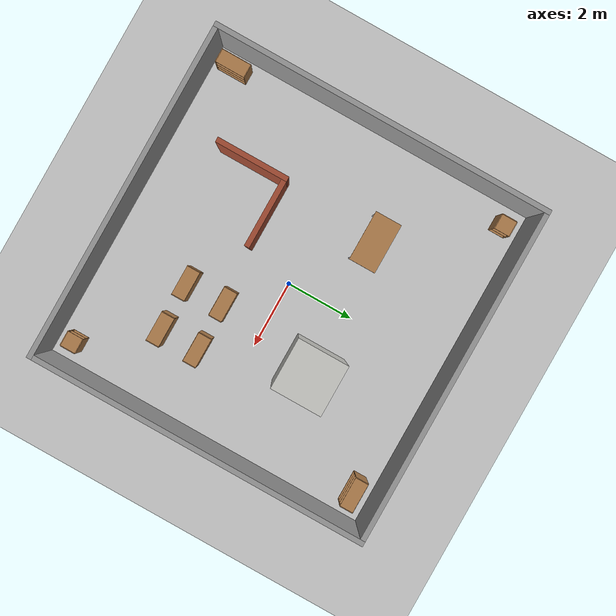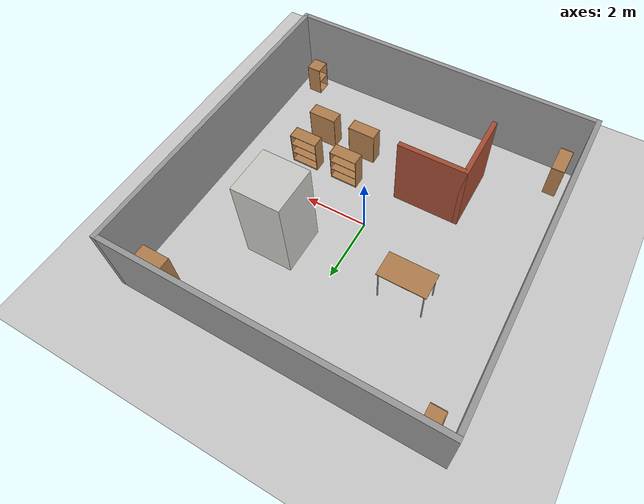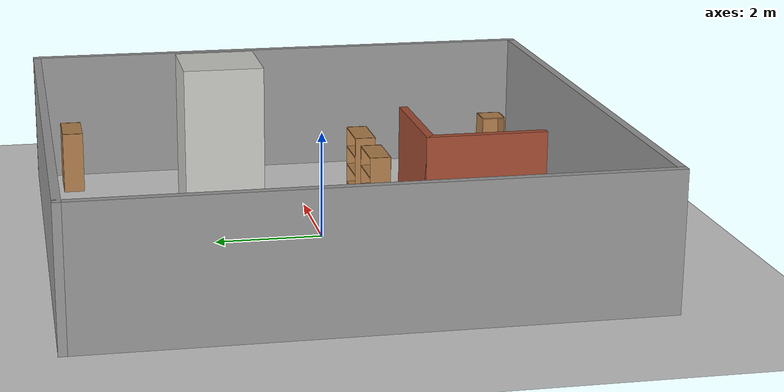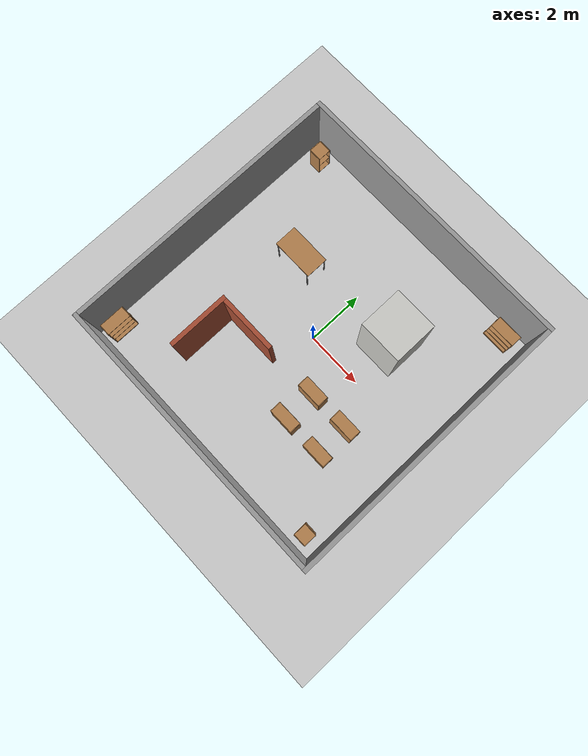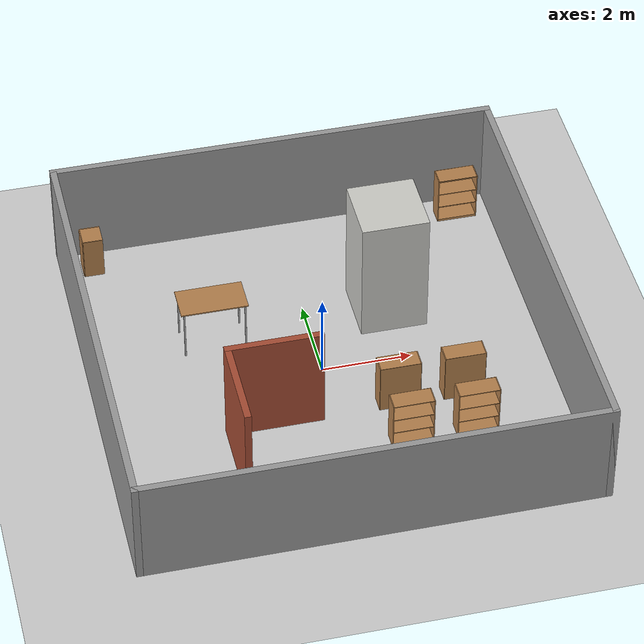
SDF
<sdf version="1.6">
 <world name="default">
  <light name="sun" type="directional">
   <pose>0 0 10 0 -0 0</pose>
   <diffuse>0.8 0.8 0.8 1</diffuse>
   <specular>0.2 0.2 0.2 1</specular>
   <attenuation>
    <range>1000</range>
    <constant>0.9</constant>
    <linear>0.01</linear>
    <quadratic>0.001</quadratic>
   </attenuation>
   <direction>-0.5 0.1 -0.9</direction>
  </light>
  <model name="ground_plane">
   <static>1</static>
   <link name="link">
    <collision name="collision">
     <geometry><plane><normal>0 0 1</normal><size>100 100</size></plane></geometry>
     <surface><friction><ode><mu>100</mu><mu2>50</mu2></ode></friction></surface>
    </collision>
    <visual name="visual">
     <cast_shadows>0</cast_shadows>
     <geometry><plane><normal>0 0 1</normal><size>100 100</size></plane></geometry>
     <material>
      <script><uri>file://media/materials/scripts/gazebo.material</uri><name>Gazebo/Grey</name></script>
     </material>
    </visual>
   </link>
  </model>
  <gravity>0 0 -9.8</gravity>
  <magnetic_field>6e-06 2.3e-05 -4.2e-05</magnetic_field>
  <atmosphere type="adiabatic"/>
  <physics name="default_physics" default="0" type="ode">
   <max_step_size>0.001</max_step_size>
   <real_time_factor>1</real_time_factor>
   <real_time_update_rate>1000</real_time_update_rate>
  </physics>
  <scene><ambient>0.4 0.4 0.4 1</ambient><background>0.7 0.7 0.7 1</background><shadows>1</shadows></scene>
  <spherical_coordinates>
   <surface_model>EARTH_WGS84</surface_model>
   <latitude_deg>0</latitude_deg>
   <longitude_deg>0</longitude_deg>
   <elevation>0</elevation>
   <heading_deg>0</heading_deg>
  </spherical_coordinates>
  <model name="Untitled">
   <link name="Wall_0">
    <collision name="Wall_0_Collision">
     <geometry><box><size>10.15 0.15 2.5</size></box></geometry>
     <pose>0 0 1.25 0 -0 0</pose>
    </collision>
    <visual name="Wall_0_Visual">
     <pose>0 0 1.25 0 -0 0</pose>
     <geometry><box><size>10.15 0.15 2.5</size></box></geometry>
     <material>
      <script><uri>file://media/materials/scripts/gazebo.material</uri><name>Gazebo/Grey</name></script>
      <ambient>1 1 1 1</ambient>
     </material>
     <meta><layer>0</layer></meta>
    </visual>
    <pose>-5 0 0 0 -0 -1.5708</pose>
   </link>
   <link name="Wall_1">
    <collision name="Wall_1_Collision">
     <geometry><box><size>10.15 0.15 2.5</size></box></geometry>
     <pose>0 0 1.25 0 -0 0</pose>
    </collision>
    <visual name="Wall_1_Visual">
     <pose>0 0 1.25 0 -0 0</pose>
     <geometry><box><size>10.15 0.15 2.5</size></box></geometry>
     <material>
      <script><uri>file://media/materials/scripts/gazebo.material</uri><name>Gazebo/Grey</name></script>
      <ambient>1 1 1 1</ambient>
     </material>
     <meta><layer>0</layer></meta>
    </visual>
    <pose>0 -5 0 0 -0 0</pose>
   </link>
   <link name="Wall_2">
    <collision name="Wall_2_Collision">
     <geometry><box><size>10.15 0.15 2.5</size></box></geometry>
     <pose>0 0 1.25 0 -0 0</pose>
    </collision>
    <visual name="Wall_2_Visual">
     <pose>0 0 1.25 0 -0 0</pose>
     <geometry><box><size>10.15 0.15 2.5</size></box></geometry>
     <material>
      <script><uri>file://media/materials/scripts/gazebo.material</uri><name>Gazebo/Grey</name></script>
      <ambient>1 1 1 1</ambient>
     </material>
     <meta><layer>0</layer></meta>
    </visual>
    <pose>5 0 0 0 -0 1.5708</pose>
   </link>
   <link name="Wall_3">
    <collision name="Wall_3_Collision">
     <geometry><box><size>10.15 0.15 2.5</size></box></geometry>
     <pose>0 0 1.25 0 -0 0</pose>
    </collision>
    <visual name="Wall_3_Visual">
     <pose>0 0 1.25 0 -0 0</pose>
     <geometry><box><size>10.15 0.15 2.5</size></box></geometry>
     <material>
      <script><uri>file://media/materials/scripts/gazebo.material</uri><name>Gazebo/Grey</name></script>
      <ambient>1 1 1 1</ambient>
     </material>
     <meta><layer>0</layer></meta>
    </visual>
    <pose>0 5 0 0 -0 3.14159</pose>
   </link>
   <static>1</static>
  </model>
  <model name="Untitled1">
   <pose>-1.3726 -2.45164 0 0 -0 0</pose>
   <link name="Wall_6">
    <collision name="Wall_6_Collision">
     <geometry><box><size>2.15 0.15 2.5</size></box></geometry>
     <pose>0 0 1.25 0 -0 0</pose>
    </collision>
    <visual name="Wall_6_Visual">
     <pose>0 0 1.25 0 -0 0</pose>
     <geometry><box><size>2.15 0.15 2.5</size></box></geometry>
     <material>
      <script><uri>file://media/materials/scripts/gazebo.material</uri><name>Gazebo/Bricks</name></script>
      <ambient>1 1 1 1</ambient>
     </material>
     <meta><layer>0</layer></meta>
    </visual>
    <pose>-1 -0 0 0 -0 1.5708</pose>
   </link>
   <link name="Wall_7">
    <collision name="Wall_7_Collision">
     <geometry><box><size>2.15 0.15 2.5</size></box></geometry>
     <pose>0 0 1.25 0 -0 0</pose>
    </collision>
    <visual name="Wall_7_Visual">
     <pose>0 0 1.25 0 -0 0</pose>
     <geometry><box><size>2.15 0.15 2.5</size></box></geometry>
     <material>
      <script><uri>file://media/materials/scripts/gazebo.material</uri><name>Gazebo/Bricks</name></script>
      <ambient>1 1 1 1</ambient>
     </material>
     <meta><layer>0</layer></meta>
    </visual>
    <pose>0 1 0 0 -0 0</pose>
   </link>
   <static>1</static>
  </model>
  <model name="unit_box">
   <link name="link">
    <inertial>
     <mass>1</mass>
     <inertia>
      <ixx>0.166667</ixx>
      <ixy>0</ixy>
      <ixz>0</ixz>
      <iyy>0.166667</iyy>
      <iyz>0</iyz>
      <izz>0.166667</izz>
     </inertia>
    </inertial>
    <visual name="visual">
     <geometry><box><size>1.5 1.5 3</size></box></geometry>
     <material>
      <script><name>Gazebo/CeilingTiled</name><uri>file://media/materials/scripts/gazebo.material</uri></script>
      <shader type="pixel"><normal_map>__default__</normal_map></shader>
      <ambient>0.3 0.3 0.3 1</ambient>
      <diffuse>0.7 0.7 0.7 1</diffuse>
      <specular>0.01 0.01 0.01 1</specular>
      <emissive>0 0 0 1</emissive>
     </material>
    </visual>
    <collision name="collision">
     <geometry><box><size>1.5 1.5 3</size></box></geometry>
     <surface>
      <friction>
       <ode><mu>1</mu><mu2>1</mu2><fdir1>0 0 0</fdir1><slip1>0</slip1><slip2>0</slip2></ode>
       <torsional>
        <coefficient>1</coefficient>
        <patch_radius>0</patch_radius>
        <surface_radius>0</surface_radius>
        <use_patch_radius>1</use_patch_radius>
        <ode><slip>0</slip></ode>
       </torsional>
      </friction>
      <bounce><restitution_coefficient>0</restitution_coefficient><threshold>1e+06</threshold></bounce>
      <contact>
       <collide_without_contact>0</collide_without_contact>
       <collide_without_contact_bitmask>1</collide_without_contact_bitmask>
       <collide_bitmask>1</collide_bitmask>
       <ode>
        <soft_cfm>0</soft_cfm>
        <soft_erp>0.2</soft_erp>
        <kp>1e+13</kp>
        <kd>1</kd>
        <max_vel>0.01</max_vel>
        <min_depth>0</min_depth>
       </ode>
       <bullet>
        <split_impulse>1</split_impulse>
        <split_impulse_penetration_threshold>-0.01</split_impulse_penetration_threshold>
        <soft_cfm>0</soft_cfm>
        <soft_erp>0.2</soft_erp>
        <kp>1e+13</kp>
        <kd>1</kd>
       </bullet>
      </contact>
     </surface>
    </collision>
   </link>
   <static>0</static>
   <pose>1.84586 1.65412 1.5 2e-06 -0 0.000122</pose>
  </model>
  <model name="table">
   <static>1</static>
   <link name="link">
    <collision name="surface">
     <pose>0 0 1.2 0 -0 0</pose>
     <geometry><box><size>1.5 0.8 0.03</size></box></geometry>
    </collision>
    <visual name="visual1">
     <pose>0 0 1.2 0 -0 0</pose>
     <geometry><box><size>1.5 0.8 0.03</size></box></geometry>
     <material>
      <script><uri>file://media/materials/scripts/gazebo.material</uri><name>Gazebo/Wood</name></script>
     </material>
    </visual>
    <collision name="front_left_leg">
     <pose>0.68 0.38 0.6 0 -0 0</pose>
     <geometry><cylinder><radius>0.02</radius><length>1.2</length></cylinder></geometry>
    </collision>
    <visual name="front_left_leg">
     <pose>0.68 0.38 0.6 0 -0 0</pose>
     <geometry><cylinder><radius>0.02</radius><length>1.2</length></cylinder></geometry>
     <material>
      <script><uri>file://media/materials/scripts/gazebo.material</uri><name>Gazebo/Grey</name></script>
     </material>
    </visual>
    <collision name="front_right_leg">
     <pose>0.68 -0.38 0.6 0 -0 0</pose>
     <geometry><cylinder><radius>0.02</radius><length>1.2</length></cylinder></geometry>
    </collision>
    <visual name="front_right_leg">
     <pose>0.68 -0.38 0.6 0 -0 0</pose>
     <geometry><cylinder><radius>0.02</radius><length>1.2</length></cylinder></geometry>
     <material>
      <script><uri>file://media/materials/scripts/gazebo.material</uri><name>Gazebo/Grey</name></script>
     </material>
    </visual>
    <collision name="back_right_leg">
     <pose>-0.68 -0.38 0.6 0 -0 0</pose>
     <geometry><cylinder><radius>0.02</radius><length>1.2</length></cylinder></geometry>
    </collision>
    <visual name="back_right_leg">
     <pose>-0.68 -0.38 0.6 0 -0 0</pose>
     <geometry><cylinder><radius>0.02</radius><length>1.2</length></cylinder></geometry>
     <material>
      <script><uri>file://media/materials/scripts/gazebo.material</uri><name>Gazebo/Grey</name></script>
     </material>
    </visual>
    <collision name="back_left_leg">
     <pose>-0.68 0.38 0.6 0 -0 0</pose>
     <geometry><cylinder><radius>0.02</radius><length>1.2</length></cylinder></geometry>
    </collision>
    <visual name="back_left_leg">
     <pose>-0.68 0.38 0.6 0 -0 0</pose>
     <geometry><cylinder><radius>0.02</radius><length>1.2</length></cylinder></geometry>
     <material>
      <script><uri>file://media/materials/scripts/gazebo.material</uri><name>Gazebo/Grey</name></script>
     </material>
    </visual>
   </link>
   <pose>-2.14903 1.49703 0 0 -0 0</pose>
  </model>
  <model name="cabinet">
   <static>1</static>
   <link name="cabinet_bottom_plate">
    <inertial>
     <pose>0 0 -1 0 -0 0</pose>
     <inertia><ixx>2.05</ixx><ixy>0</ixy><ixz>0</ixz><iyy>2.05</iyy><iyz>0</iyz><izz>2.05</izz></inertia>
     <mass>25</mass>
    </inertial>
    <collision name="cabinet_bottom_plate_geom">
     <pose>0 0 0.01 0 -0 0</pose>
     <geometry><box><size>0.45 0.45 0.02</size></box></geometry>
    </collision>
    <visual name="cabinet_bottom_plate_geom_visual">
     <pose>0 0 0.01 0 -0 0</pose>
     <geometry><box><size>0.45 0.45 0.02</size></box></geometry>
     <material>
      <script><uri>file://media/materials/scripts/gazebo.material</uri><name>Gazebo/Wood</name></script>
     </material>
    </visual>
    <collision name="cabinet_bottom_plate_geom_cabinet_back_plate">
     <pose>0.235 0 0.51 0 -0 0</pose>
     <geometry><box><size>0.02 0.45 1.02</size></box></geometry>
    </collision>
    <visual name="cabinet_bottom_plate_geom_cabinet_back_plate_visual">
     <pose>0.235 0 0.51 0 -0 0</pose>
     <geometry><box><size>0.02 0.45 1.02</size></box></geometry>
     <material>
      <script><uri>file://media/materials/scripts/gazebo.material</uri><name>Gazebo/Wood</name></script>
     </material>
    </visual>
    <collision name="cabinet_bottom_plate_geom_cabinet_left_plate">
     <pose>0 0.235 0.51 0 -0 0</pose>
     <geometry><box><size>0.45 0.02 1.02</size></box></geometry>
    </collision>
    <visual name="cabinet_bottom_plate_geom_cabinet_left_plate_visual">
     <pose>0 0.235 0.51 0 -0 0</pose>
     <geometry><box><size>0.45 0.02 1.02</size></box></geometry>
     <material>
      <script><uri>file://media/materials/scripts/gazebo.material</uri><name>Gazebo/Wood</name></script>
     </material>
    </visual>
    <collision name="cabinet_bottom_plate_geom_cabinet_middle_plate">
     <pose>0 0 0.51 0 -0 0</pose>
     <geometry><box><size>0.45 0.45 0.02</size></box></geometry>
    </collision>
    <visual name="cabinet_bottom_plate_geom_cabinet_middle_plate_visual">
     <pose>0 0 0.51 0 -0 0</pose>
     <geometry><box><size>0.45 0.45 0.02</size></box></geometry>
     <material>
      <script><uri>file://media/materials/scripts/gazebo.material</uri><name>Gazebo/Wood</name></script>
     </material>
    </visual>
    <collision name="cabinet_bottom_plate_geom_cabinet_right_plate">
     <pose>0 -0.235 0.51 0 -0 0</pose>
     <geometry><box><size>0.45 0.02 1.02</size></box></geometry>
    </collision>
    <visual name="cabinet_bottom_plate_geom_cabinet_right_plate_visual">
     <pose>0 -0.235 0.51 0 -0 0</pose>
     <geometry><box><size>0.45 0.02 1.02</size></box></geometry>
     <material>
      <script><uri>file://media/materials/scripts/gazebo.material</uri><name>Gazebo/Wood</name></script>
     </material>
    </visual>
    <collision name="cabinet_bottom_plate_geom_cabinet_top_plate">
     <pose>0 0 1.01 0 -0 0</pose>
     <geometry><box><size>0.45 0.45 0.02</size></box></geometry>
    </collision>
    <visual name="cabinet_bottom_plate_geom_cabinet_top_plate_visual">
     <pose>0 0 1.01 0 -0 0</pose>
     <geometry><box><size>0.45 0.45 0.02</size></box></geometry>
     <material>
      <script><uri>file://media/materials/scripts/gazebo.material</uri><name>Gazebo/Wood</name></script>
     </material>
    </visual>
   </link>
   <pose>-4.32907 4.39801 0 0 -0 3.14</pose>
  </model>
  <model name="bookshelf">
   <static>1</static>
   <link name="link">
    <inertial><mass>1</mass></inertial>
    <collision name="back">
     <pose>0 0.005 0.6 0 -0 0</pose>
     <geometry><box><size>0.9 0.01 1.2</size></box></geometry>
    </collision>
    <visual name="visual1">
     <pose>0 0.005 0.6 0 -0 0</pose>
     <geometry><box><size>0.9 0.01 1.2</size></box></geometry>
     <material>
      <script><uri>file://media/materials/scripts/gazebo.material</uri><name>Gazebo/Wood</name></script>
     </material>
    </visual>
    <collision name="left_side">
     <pose>0.45 -0.195 0.6 0 -0 0</pose>
     <geometry><box><size>0.02 0.4 1.2</size></box></geometry>
    </collision>
    <visual name="visual2">
     <pose>0.45 -0.195 0.6 0 -0 0</pose>
     <geometry><box><size>0.02 0.4 1.2</size></box></geometry>
     <material>
      <script><uri>file://media/materials/scripts/gazebo.material</uri><name>Gazebo/Wood</name></script>
     </material>
    </visual>
    <collision name="right_side">
     <pose>-0.45 -0.195 0.6 0 -0 0</pose>
     <geometry><box><size>0.02 0.4 1.2</size></box></geometry>
    </collision>
    <visual name="visual3">
     <pose>-0.45 -0.195 0.6 0 -0 0</pose>
     <geometry><box><size>0.02 0.4 1.2</size></box></geometry>
     <material>
      <script><uri>file://media/materials/scripts/gazebo.material</uri><name>Gazebo/Wood</name></script>
     </material>
    </visual>
    <collision name="bottom">
     <pose>0 -0.195 0.03 0 -0 0</pose>
     <geometry><box><size>0.88 0.4 0.06</size></box></geometry>
    </collision>
    <visual name="visual4">
     <pose>0 -0.195 0.03 0 -0 0</pose>
     <geometry><box><size>0.88 0.4 0.06</size></box></geometry>
     <material>
      <script><uri>file://media/materials/scripts/gazebo.material</uri><name>Gazebo/Wood</name></script>
     </material>
    </visual>
    <collision name="top">
     <pose>0 -0.195 1.19 0 -0 0</pose>
     <geometry><box><size>0.88 0.4 0.02</size></box></geometry>
    </collision>
    <visual name="visual5">
     <pose>0 -0.195 1.19 0 -0 0</pose>
     <geometry><box><size>0.88 0.4 0.02</size></box></geometry>
     <material>
      <script><uri>file://media/materials/scripts/gazebo.material</uri><name>Gazebo/Wood</name></script>
     </material>
    </visual>
    <collision name="low_shelf">
     <pose>0 -0.195 0.43 0 -0 0</pose>
     <geometry><box><size>0.88 0.4 0.02</size></box></geometry>
    </collision>
    <visual name="visual6">
     <pose>0 -0.195 0.43 0 -0 0</pose>
     <geometry><box><size>0.88 0.4 0.02</size></box></geometry>
     <material>
      <script><uri>file://media/materials/scripts/gazebo.material</uri><name>Gazebo/Wood</name></script>
     </material>
    </visual>
    <collision name="high_shelf">
     <pose>0 -0.195 0.8 0 -0 0</pose>
     <geometry><box><size>0.88 0.4 0.02</size></box></geometry>
    </collision>
    <visual name="visual7">
     <pose>0 -0.195 0.8 0 -0 0</pose>
     <geometry><box><size>0.88 0.4 0.02</size></box></geometry>
     <material>
      <script><uri>file://media/materials/scripts/gazebo.material</uri><name>Gazebo/Wood</name></script>
     </material>
    </visual>
   </link>
   <pose>4.16289 4.588 0 0 -0 0</pose>
  </model>
  <model name="bookshelf_0">
   <static>1</static>
   <link name="link">
    <inertial><mass>1</mass></inertial>
    <collision name="back">
     <pose>0 0.005 0.6 0 -0 0</pose>
     <geometry><box><size>0.9 0.01 1.2</size></box></geometry>
    </collision>
    <visual name="visual1">
     <pose>0 0.005 0.6 0 -0 0</pose>
     <geometry><box><size>0.9 0.01 1.2</size></box></geometry>
     <material>
      <script><uri>file://media/materials/scripts/gazebo.material</uri><name>Gazebo/Wood</name></script>
     </material>
    </visual>
    <collision name="left_side">
     <pose>0.45 -0.195 0.6 0 -0 0</pose>
     <geometry><box><size>0.02 0.4 1.2</size></box></geometry>
    </collision>
    <visual name="visual2">
     <pose>0.45 -0.195 0.6 0 -0 0</pose>
     <geometry><box><size>0.02 0.4 1.2</size></box></geometry>
     <material>
      <script><uri>file://media/materials/scripts/gazebo.material</uri><name>Gazebo/Wood</name></script>
     </material>
    </visual>
    <collision name="right_side">
     <pose>-0.45 -0.195 0.6 0 -0 0</pose>
     <geometry><box><size>0.02 0.4 1.2</size></box></geometry>
    </collision>
    <visual name="visual3">
     <pose>-0.45 -0.195 0.6 0 -0 0</pose>
     <geometry><box><size>0.02 0.4 1.2</size></box></geometry>
     <material>
      <script><uri>file://media/materials/scripts/gazebo.material</uri><name>Gazebo/Wood</name></script>
     </material>
    </visual>
    <collision name="bottom">
     <pose>0 -0.195 0.03 0 -0 0</pose>
     <geometry><box><size>0.88 0.4 0.06</size></box></geometry>
    </collision>
    <visual name="visual4">
     <pose>0 -0.195 0.03 0 -0 0</pose>
     <geometry><box><size>0.88 0.4 0.06</size></box></geometry>
     <material>
      <script><uri>file://media/materials/scripts/gazebo.material</uri><name>Gazebo/Wood</name></script>
     </material>
    </visual>
    <collision name="top">
     <pose>0 -0.195 1.19 0 -0 0</pose>
     <geometry><box><size>0.88 0.4 0.02</size></box></geometry>
    </collision>
    <visual name="visual5">
     <pose>0 -0.195 1.19 0 -0 0</pose>
     <geometry><box><size>0.88 0.4 0.02</size></box></geometry>
     <material>
      <script><uri>file://media/materials/scripts/gazebo.material</uri><name>Gazebo/Wood</name></script>
     </material>
    </visual>
    <collision name="low_shelf">
     <pose>0 -0.195 0.43 0 -0 0</pose>
     <geometry><box><size>0.88 0.4 0.02</size></box></geometry>
    </collision>
    <visual name="visual6">
     <pose>0 -0.195 0.43 0 -0 0</pose>
     <geometry><box><size>0.88 0.4 0.02</size></box></geometry>
     <material>
      <script><uri>file://media/materials/scripts/gazebo.material</uri><name>Gazebo/Wood</name></script>
     </material>
    </visual>
    <collision name="high_shelf">
     <pose>0 -0.195 0.8 0 -0 0</pose>
     <geometry><box><size>0.88 0.4 0.02</size></box></geometry>
    </collision>
    <visual name="visual7">
     <pose>0 -0.195 0.8 0 -0 0</pose>
     <geometry><box><size>0.88 0.4 0.02</size></box></geometry>
     <material>
      <script><uri>file://media/materials/scripts/gazebo.material</uri><name>Gazebo/Wood</name></script>
     </material>
    </visual>
   </link>
   <pose>-4.7 -4.3 0 0 -0 1.57</pose>
  </model>
  <model name="cabinet_0">
   <static>1</static>
   <link name="cabinet_bottom_plate">
    <inertial>
     <pose>0 0 -1 0 -0 0</pose>
     <inertia><ixx>2.05</ixx><ixy>0</ixy><ixz>0</ixz><iyy>2.05</iyy><iyz>0</iyz><izz>2.05</izz></inertia>
     <mass>25</mass>
    </inertial>
    <collision name="cabinet_bottom_plate_geom">
     <pose>0 0 0.01 0 -0 0</pose>
     <geometry><box><size>0.45 0.45 0.02</size></box></geometry>
    </collision>
    <visual name="cabinet_bottom_plate_geom_visual">
     <pose>0 0 0.01 0 -0 0</pose>
     <geometry><box><size>0.45 0.45 0.02</size></box></geometry>
     <material>
      <script><uri>file://media/materials/scripts/gazebo.material</uri><name>Gazebo/Wood</name></script>
     </material>
    </visual>
    <collision name="cabinet_bottom_plate_geom_cabinet_back_plate">
     <pose>0.235 0 0.51 0 -0 0</pose>
     <geometry><box><size>0.02 0.45 1.02</size></box></geometry>
    </collision>
    <visual name="cabinet_bottom_plate_geom_cabinet_back_plate_visual">
     <pose>0.235 0 0.51 0 -0 0</pose>
     <geometry><box><size>0.02 0.45 1.02</size></box></geometry>
     <material>
      <script><uri>file://media/materials/scripts/gazebo.material</uri><name>Gazebo/Wood</name></script>
     </material>
    </visual>
    <collision name="cabinet_bottom_plate_geom_cabinet_left_plate">
     <pose>0 0.235 0.51 0 -0 0</pose>
     <geometry><box><size>0.45 0.02 1.02</size></box></geometry>
    </collision>
    <visual name="cabinet_bottom_plate_geom_cabinet_left_plate_visual">
     <pose>0 0.235 0.51 0 -0 0</pose>
     <geometry><box><size>0.45 0.02 1.02</size></box></geometry>
     <material>
      <script><uri>file://media/materials/scripts/gazebo.material</uri><name>Gazebo/Wood</name></script>
     </material>
    </visual>
    <collision name="cabinet_bottom_plate_geom_cabinet_middle_plate">
     <pose>0 0 0.51 0 -0 0</pose>
     <geometry><box><size>0.45 0.45 0.02</size></box></geometry>
    </collision>
    <visual name="cabinet_bottom_plate_geom_cabinet_middle_plate_visual">
     <pose>0 0 0.51 0 -0 0</pose>
     <geometry><box><size>0.45 0.45 0.02</size></box></geometry>
     <material>
      <script><uri>file://media/materials/scripts/gazebo.material</uri><name>Gazebo/Wood</name></script>
     </material>
    </visual>
    <collision name="cabinet_bottom_plate_geom_cabinet_right_plate">
     <pose>0 -0.235 0.51 0 -0 0</pose>
     <geometry><box><size>0.45 0.02 1.02</size></box></geometry>
    </collision>
    <visual name="cabinet_bottom_plate_geom_cabinet_right_plate_visual">
     <pose>0 -0.235 0.51 0 -0 0</pose>
     <geometry><box><size>0.45 0.02 1.02</size></box></geometry>
     <material>
      <script><uri>file://media/materials/scripts/gazebo.material</uri><name>Gazebo/Wood</name></script>
     </material>
    </visual>
    <collision name="cabinet_bottom_plate_geom_cabinet_top_plate">
     <pose>0 0 1.01 0 -0 0</pose>
     <geometry><box><size>0.45 0.45 0.02</size></box></geometry>
    </collision>
    <visual name="cabinet_bottom_plate_geom_cabinet_top_plate_visual">
     <pose>0 0 1.01 0 -0 0</pose>
     <geometry><box><size>0.45 0.45 0.02</size></box></geometry>
     <material>
      <script><uri>file://media/materials/scripts/gazebo.material</uri><name>Gazebo/Wood</name></script>
     </material>
    </visual>
   </link>
   <pose>4.338 -4.42474 0 0 -0 0</pose>
  </model>
  <model name="bookshelf_1">
   <static>1</static>
   <link name="link">
    <inertial><mass>1</mass></inertial>
    <collision name="back">
     <pose>0 0.005 0.6 0 -0 0</pose>
     <geometry><box><size>0.9 0.01 1.2</size></box></geometry>
    </collision>
    <visual name="visual1">
     <pose>0 0.005 0.6 0 -0 0</pose>
     <geometry><box><size>0.9 0.01 1.2</size></box></geometry>
     <material>
      <script><uri>file://media/materials/scripts/gazebo.material</uri><name>Gazebo/Wood</name></script>
     </material>
    </visual>
    <collision name="left_side">
     <pose>0.45 -0.195 0.6 0 -0 0</pose>
     <geometry><box><size>0.02 0.4 1.2</size></box></geometry>
    </collision>
    <visual name="visual2">
     <pose>0.45 -0.195 0.6 0 -0 0</pose>
     <geometry><box><size>0.02 0.4 1.2</size></box></geometry>
     <material>
      <script><uri>file://media/materials/scripts/gazebo.material</uri><name>Gazebo/Wood</name></script>
     </material>
    </visual>
    <collision name="right_side">
     <pose>-0.45 -0.195 0.6 0 -0 0</pose>
     <geometry><box><size>0.02 0.4 1.2</size></box></geometry>
    </collision>
    <visual name="visual3">
     <pose>-0.45 -0.195 0.6 0 -0 0</pose>
     <geometry><box><size>0.02 0.4 1.2</size></box></geometry>
     <material>
      <script><uri>file://media/materials/scripts/gazebo.material</uri><name>Gazebo/Wood</name></script>
     </material>
    </visual>
    <collision name="bottom">
     <pose>0 -0.195 0.03 0 -0 0</pose>
     <geometry><box><size>0.88 0.4 0.06</size></box></geometry>
    </collision>
    <visual name="visual4">
     <pose>0 -0.195 0.03 0 -0 0</pose>
     <geometry><box><size>0.88 0.4 0.06</size></box></geometry>
     <material>
      <script><uri>file://media/materials/scripts/gazebo.material</uri><name>Gazebo/Wood</name></script>
     </material>
    </visual>
    <collision name="top">
     <pose>0 -0.195 1.19 0 -0 0</pose>
     <geometry><box><size>0.88 0.4 0.02</size></box></geometry>
    </collision>
    <visual name="visual5">
     <pose>0 -0.195 1.19 0 -0 0</pose>
     <geometry><box><size>0.88 0.4 0.02</size></box></geometry>
     <material>
      <script><uri>file://media/materials/scripts/gazebo.material</uri><name>Gazebo/Wood</name></script>
     </material>
    </visual>
    <collision name="low_shelf">
     <pose>0 -0.195 0.43 0 -0 0</pose>
     <geometry><box><size>0.88 0.4 0.02</size></box></geometry>
    </collision>
    <visual name="visual6">
     <pose>0 -0.195 0.43 0 -0 0</pose>
     <geometry><box><size>0.88 0.4 0.02</size></box></geometry>
     <material>
      <script><uri>file://media/materials/scripts/gazebo.material</uri><name>Gazebo/Wood</name></script>
     </material>
    </visual>
    <collision name="high_shelf">
     <pose>0 -0.195 0.8 0 -0 0</pose>
     <geometry><box><size>0.88 0.4 0.02</size></box></geometry>
    </collision>
    <visual name="visual7">
     <pose>0 -0.195 0.8 0 -0 0</pose>
     <geometry><box><size>0.88 0.4 0.02</size></box></geometry>
     <material>
      <script><uri>file://media/materials/scripts/gazebo.material</uri><name>Gazebo/Wood</name></script>
     </material>
    </visual>
   </link>
   <pose>1.37861 -2.2748 0 0 -0 0</pose>
  </model>
  <model name="bookshelf_2">
   <static>1</static>
   <link name="link">
    <inertial><mass>1</mass></inertial>
    <collision name="back">
     <pose>0 0.005 0.6 0 -0 0</pose>
     <geometry><box><size>0.9 0.01 1.2</size></box></geometry>
    </collision>
    <visual name="visual1">
     <pose>0 0.005 0.6 0 -0 0</pose>
     <geometry><box><size>0.9 0.01 1.2</size></box></geometry>
     <material>
      <script><uri>file://media/materials/scripts/gazebo.material</uri><name>Gazebo/Wood</name></script>
     </material>
    </visual>
    <collision name="left_side">
     <pose>0.45 -0.195 0.6 0 -0 0</pose>
     <geometry><box><size>0.02 0.4 1.2</size></box></geometry>
    </collision>
    <visual name="visual2">
     <pose>0.45 -0.195 0.6 0 -0 0</pose>
     <geometry><box><size>0.02 0.4 1.2</size></box></geometry>
     <material>
      <script><uri>file://media/materials/scripts/gazebo.material</uri><name>Gazebo/Wood</name></script>
     </material>
    </visual>
    <collision name="right_side">
     <pose>-0.45 -0.195 0.6 0 -0 0</pose>
     <geometry><box><size>0.02 0.4 1.2</size></box></geometry>
    </collision>
    <visual name="visual3">
     <pose>-0.45 -0.195 0.6 0 -0 0</pose>
     <geometry><box><size>0.02 0.4 1.2</size></box></geometry>
     <material>
      <script><uri>file://media/materials/scripts/gazebo.material</uri><name>Gazebo/Wood</name></script>
     </material>
    </visual>
    <collision name="bottom">
     <pose>0 -0.195 0.03 0 -0 0</pose>
     <geometry><box><size>0.88 0.4 0.06</size></box></geometry>
    </collision>
    <visual name="visual4">
     <pose>0 -0.195 0.03 0 -0 0</pose>
     <geometry><box><size>0.88 0.4 0.06</size></box></geometry>
     <material>
      <script><uri>file://media/materials/scripts/gazebo.material</uri><name>Gazebo/Wood</name></script>
     </material>
    </visual>
    <collision name="top">
     <pose>0 -0.195 1.19 0 -0 0</pose>
     <geometry><box><size>0.88 0.4 0.02</size></box></geometry>
    </collision>
    <visual name="visual5">
     <pose>0 -0.195 1.19 0 -0 0</pose>
     <geometry><box><size>0.88 0.4 0.02</size></box></geometry>
     <material>
      <script><uri>file://media/materials/scripts/gazebo.material</uri><name>Gazebo/Wood</name></script>
     </material>
    </visual>
    <collision name="low_shelf">
     <pose>0 -0.195 0.43 0 -0 0</pose>
     <geometry><box><size>0.88 0.4 0.02</size></box></geometry>
    </collision>
    <visual name="visual6">
     <pose>0 -0.195 0.43 0 -0 0</pose>
     <geometry><box><size>0.88 0.4 0.02</size></box></geometry>
     <material>
      <script><uri>file://media/materials/scripts/gazebo.material</uri><name>Gazebo/Wood</name></script>
     </material>
    </visual>
    <collision name="high_shelf">
     <pose>0 -0.195 0.8 0 -0 0</pose>
     <geometry><box><size>0.88 0.4 0.02</size></box></geometry>
    </collision>
    <visual name="visual7">
     <pose>0 -0.195 0.8 0 -0 0</pose>
     <geometry><box><size>0.88 0.4 0.02</size></box></geometry>
     <material>
      <script><uri>file://media/materials/scripts/gazebo.material</uri><name>Gazebo/Wood</name></script>
     </material>
    </visual>
   </link>
   <pose>2.81578 -2.26675 0 0 -0 0</pose>
  </model>
  <model name="bookshelf_3">
   <static>1</static>
   <link name="link">
    <inertial><mass>1</mass></inertial>
    <collision name="back">
     <pose>0 0.005 0.6 0 -0 0</pose>
     <geometry><box><size>0.9 0.01 1.2</size></box></geometry>
    </collision>
    <visual name="visual1">
     <pose>0 0.005 0.6 0 -0 0</pose>
     <geometry><box><size>0.9 0.01 1.2</size></box></geometry>
     <material>
      <script><uri>file://media/materials/scripts/gazebo.material</uri><name>Gazebo/Wood</name></script>
     </material>
    </visual>
    <collision name="left_side">
     <pose>0.45 -0.195 0.6 0 -0 0</pose>
     <geometry><box><size>0.02 0.4 1.2</size></box></geometry>
    </collision>
    <visual name="visual2">
     <pose>0.45 -0.195 0.6 0 -0 0</pose>
     <geometry><box><size>0.02 0.4 1.2</size></box></geometry>
     <material>
      <script><uri>file://media/materials/scripts/gazebo.material</uri><name>Gazebo/Wood</name></script>
     </material>
    </visual>
    <collision name="right_side">
     <pose>-0.45 -0.195 0.6 0 -0 0</pose>
     <geometry><box><size>0.02 0.4 1.2</size></box></geometry>
    </collision>
    <visual name="visual3">
     <pose>-0.45 -0.195 0.6 0 -0 0</pose>
     <geometry><box><size>0.02 0.4 1.2</size></box></geometry>
     <material>
      <script><uri>file://media/materials/scripts/gazebo.material</uri><name>Gazebo/Wood</name></script>
     </material>
    </visual>
    <collision name="bottom">
     <pose>0 -0.195 0.03 0 -0 0</pose>
     <geometry><box><size>0.88 0.4 0.06</size></box></geometry>
    </collision>
    <visual name="visual4">
     <pose>0 -0.195 0.03 0 -0 0</pose>
     <geometry><box><size>0.88 0.4 0.06</size></box></geometry>
     <material>
      <script><uri>file://media/materials/scripts/gazebo.material</uri><name>Gazebo/Wood</name></script>
     </material>
    </visual>
    <collision name="top">
     <pose>0 -0.195 1.19 0 -0 0</pose>
     <geometry><box><size>0.88 0.4 0.02</size></box></geometry>
    </collision>
    <visual name="visual5">
     <pose>0 -0.195 1.19 0 -0 0</pose>
     <geometry><box><size>0.88 0.4 0.02</size></box></geometry>
     <material>
      <script><uri>file://media/materials/scripts/gazebo.material</uri><name>Gazebo/Wood</name></script>
     </material>
    </visual>
    <collision name="low_shelf">
     <pose>0 -0.195 0.43 0 -0 0</pose>
     <geometry><box><size>0.88 0.4 0.02</size></box></geometry>
    </collision>
    <visual name="visual6">
     <pose>0 -0.195 0.43 0 -0 0</pose>
     <geometry><box><size>0.88 0.4 0.02</size></box></geometry>
     <material>
      <script><uri>file://media/materials/scripts/gazebo.material</uri><name>Gazebo/Wood</name></script>
     </material>
    </visual>
    <collision name="high_shelf">
     <pose>0 -0.195 0.8 0 -0 0</pose>
     <geometry><box><size>0.88 0.4 0.02</size></box></geometry>
    </collision>
    <visual name="visual7">
     <pose>0 -0.195 0.8 0 -0 0</pose>
     <geometry><box><size>0.88 0.4 0.02</size></box></geometry>
     <material>
      <script><uri>file://media/materials/scripts/gazebo.material</uri><name>Gazebo/Wood</name></script>
     </material>
    </visual>
   </link>
   <pose>1.37828 -1.5 0 0 -0 3.14</pose>
  </model>
  <model name="bookshelf_4">
   <static>1</static>
   <link name="link">
    <inertial><mass>1</mass></inertial>
    <collision name="back">
     <pose>0 0.005 0.6 0 -0 0</pose>
     <geometry><box><size>0.9 0.01 1.2</size></box></geometry>
    </collision>
    <visual name="visual1">
     <pose>0 0.005 0.6 0 -0 0</pose>
     <geometry><box><size>0.9 0.01 1.2</size></box></geometry>
     <material>
      <script><uri>file://media/materials/scripts/gazebo.material</uri><name>Gazebo/Wood</name></script>
     </material>
    </visual>
    <collision name="left_side">
     <pose>0.45 -0.195 0.6 0 -0 0</pose>
     <geometry><box><size>0.02 0.4 1.2</size></box></geometry>
    </collision>
    <visual name="visual2">
     <pose>0.45 -0.195 0.6 0 -0 0</pose>
     <geometry><box><size>0.02 0.4 1.2</size></box></geometry>
     <material>
      <script><uri>file://media/materials/scripts/gazebo.material</uri><name>Gazebo/Wood</name></script>
     </material>
    </visual>
    <collision name="right_side">
     <pose>-0.45 -0.195 0.6 0 -0 0</pose>
     <geometry><box><size>0.02 0.4 1.2</size></box></geometry>
    </collision>
    <visual name="visual3">
     <pose>-0.45 -0.195 0.6 0 -0 0</pose>
     <geometry><box><size>0.02 0.4 1.2</size></box></geometry>
     <material>
      <script><uri>file://media/materials/scripts/gazebo.material</uri><name>Gazebo/Wood</name></script>
     </material>
    </visual>
    <collision name="bottom">
     <pose>0 -0.195 0.03 0 -0 0</pose>
     <geometry><box><size>0.88 0.4 0.06</size></box></geometry>
    </collision>
    <visual name="visual4">
     <pose>0 -0.195 0.03 0 -0 0</pose>
     <geometry><box><size>0.88 0.4 0.06</size></box></geometry>
     <material>
      <script><uri>file://media/materials/scripts/gazebo.material</uri><name>Gazebo/Wood</name></script>
     </material>
    </visual>
    <collision name="top">
     <pose>0 -0.195 1.19 0 -0 0</pose>
     <geometry><box><size>0.88 0.4 0.02</size></box></geometry>
    </collision>
    <visual name="visual5">
     <pose>0 -0.195 1.19 0 -0 0</pose>
     <geometry><box><size>0.88 0.4 0.02</size></box></geometry>
     <material>
      <script><uri>file://media/materials/scripts/gazebo.material</uri><name>Gazebo/Wood</name></script>
     </material>
    </visual>
    <collision name="low_shelf">
     <pose>0 -0.195 0.43 0 -0 0</pose>
     <geometry><box><size>0.88 0.4 0.02</size></box></geometry>
    </collision>
    <visual name="visual6">
     <pose>0 -0.195 0.43 0 -0 0</pose>
     <geometry><box><size>0.88 0.4 0.02</size></box></geometry>
     <material>
      <script><uri>file://media/materials/scripts/gazebo.material</uri><name>Gazebo/Wood</name></script>
     </material>
    </visual>
    <collision name="high_shelf">
     <pose>0 -0.195 0.8 0 -0 0</pose>
     <geometry><box><size>0.88 0.4 0.02</size></box></geometry>
    </collision>
    <visual name="visual7">
     <pose>0 -0.195 0.8 0 -0 0</pose>
     <geometry><box><size>0.88 0.4 0.02</size></box></geometry>
     <material>
      <script><uri>file://media/materials/scripts/gazebo.material</uri><name>Gazebo/Wood</name></script>
     </material>
    </visual>
   </link>
   <pose>2.81545 -1.5 0 0 -0 3.14</pose>
  </model>
 </world>
</sdf>
